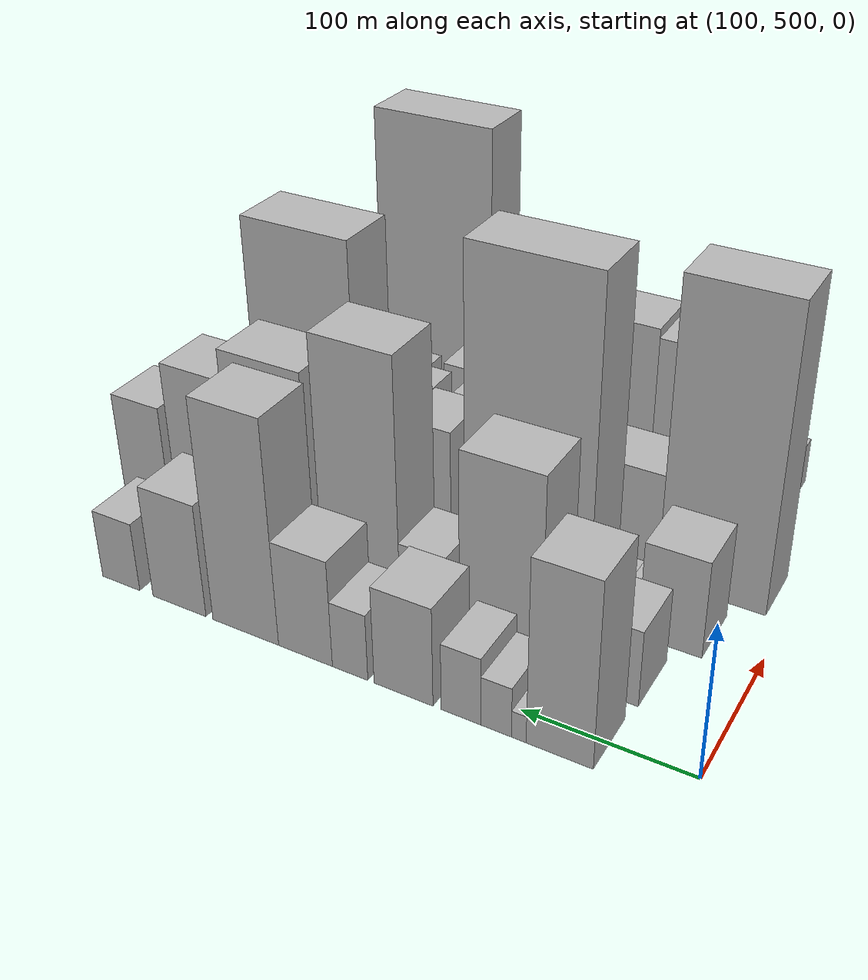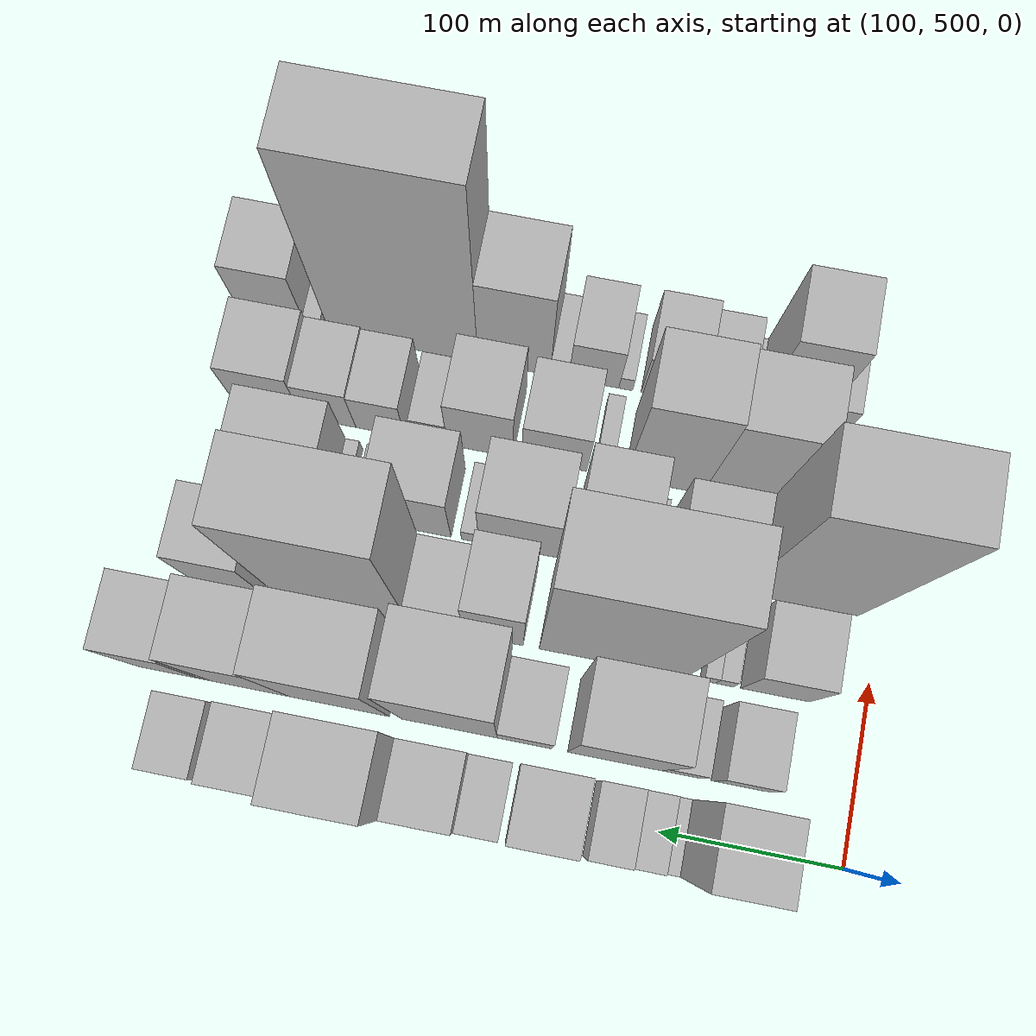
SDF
<sdf version="1.6">
 <world name="default">
  <model name="building_37">
   <static>1</static>
   <pose>100.0000 568.2960 0 0.000000 0.000000 0.000000</pose>
   <link name="link">
    <pose>0 0 60.00 0 0 0</pose>
    <collision name="collision"><geometry><box><size>40.0000 37.8832 120.0000</size></box></geometry></collision>
    <visual name="visual">
     <cast_shadows>0</cast_shadows>
     <geometry><box><size>40.0000 37.8832 120.0000</size></box></geometry>
     <material>
      <script>
       <uri>model://HANNAS_wall/materials/scripts</uri>
       <uri>model://HANNAS_wall/materials/textures</uri>
       <name>vrc/HANNAS_wall</name>
      </script>
     </material>
    </visual>
   </link>
  </model>
  <model name="building_38">
   <static>1</static>
   <pose>100.0000 591.5008 0 0.000000 0.000000 0.000000</pose>
   <link name="link">
    <pose>0 0 9.00 0 0 0</pose>
    <collision name="collision"><geometry><box><size>40.0000 8.5264 18.0000</size></box></geometry></collision>
    <visual name="visual">
     <cast_shadows>0</cast_shadows>
     <geometry><box><size>40.0000 8.5264 18.0000</size></box></geometry>
     <material>
      <script>
       <uri>model://HANNAS_wall/materials/scripts</uri>
       <uri>model://HANNAS_wall/materials/textures</uri>
       <name>vrc/HANNAS_wall</name>
      </script>
     </material>
    </visual>
   </link>
  </model>
  <model name="building_39">
   <static>1</static>
   <pose>100.0000 604.7582 0 0.000000 0.000000 0.000000</pose>
   <link name="link">
    <pose>0 0 16.50 0 0 0</pose>
    <collision name="collision"><geometry><box><size>40.0000 17.9884 33.0000</size></box></geometry></collision>
    <visual name="visual">
     <cast_shadows>0</cast_shadows>
     <geometry><box><size>40.0000 17.9884 33.0000</size></box></geometry>
     <material>
      <script>
       <uri>model://HANNAS_wall/materials/scripts</uri>
       <uri>model://HANNAS_wall/materials/textures</uri>
       <name>vrc/HANNAS_wall</name>
      </script>
     </material>
    </visual>
   </link>
  </model>
  <model name="building_40">
   <static>1</static>
   <pose>100.0000 625.6330 0 0.000000 0.000000 0.000000</pose>
   <link name="link">
    <pose>0 0 22.50 0 0 0</pose>
    <collision name="collision"><geometry><box><size>40.0000 23.7612 45.0000</size></box></geometry></collision>
    <visual name="visual">
     <cast_shadows>0</cast_shadows>
     <geometry><box><size>40.0000 23.7612 45.0000</size></box></geometry>
     <material>
      <script>
       <uri>model://HANNAS_wall/materials/scripts</uri>
       <uri>model://HANNAS_wall/materials/textures</uri>
       <name>vrc/HANNAS_wall</name>
      </script>
     </material>
    </visual>
   </link>
  </model>
  <model name="building_41">
   <static>1</static>
   <pose>100.0000 660.9530 0 0.000000 0.000000 0.000000</pose>
   <link name="link">
    <pose>0 0 33.00 0 0 0</pose>
    <collision name="collision"><geometry><box><size>40.0000 36.8787 66.0000</size></box></geometry></collision>
    <visual name="visual">
     <cast_shadows>0</cast_shadows>
     <geometry><box><size>40.0000 36.8787 66.0000</size></box></geometry>
     <material>
      <script>
       <uri>model://HANNAS_wall/materials/scripts</uri>
       <uri>model://HANNAS_wall/materials/textures</uri>
       <name>vrc/HANNAS_wall</name>
      </script>
     </material>
    </visual>
   </link>
  </model>
  <model name="building_42">
   <static>1</static>
   <pose>100.0000 694.8904 0 0.000000 0.000000 0.000000</pose>
   <link name="link">
    <pose>0 0 22.50 0 0 0</pose>
    <collision name="collision"><geometry><box><size>40.0000 22.9962 45.0000</size></box></geometry></collision>
    <visual name="visual">
     <cast_shadows>0</cast_shadows>
     <geometry><box><size>40.0000 22.9962 45.0000</size></box></geometry>
     <material>
      <script>
       <uri>model://HANNAS_wall/materials/scripts</uri>
       <uri>model://HANNAS_wall/materials/textures</uri>
       <name>vrc/HANNAS_wall</name>
      </script>
     </material>
    </visual>
   </link>
  </model>
  <model name="building_43">
   <static>1</static>
   <pose>100.0000 724.4548 0 0.000000 0.000000 0.000000</pose>
   <link name="link">
    <pose>0 0 36.00 0 0 0</pose>
    <collision name="collision"><geometry><box><size>40.0000 36.1326 72.0000</size></box></geometry></collision>
    <visual name="visual">
     <cast_shadows>0</cast_shadows>
     <geometry><box><size>40.0000 36.1326 72.0000</size></box></geometry>
     <material>
      <script>
       <uri>model://HANNAS_wall/materials/scripts</uri>
       <uri>model://HANNAS_wall/materials/textures</uri>
       <name>vrc/HANNAS_wall</name>
      </script>
     </material>
    </visual>
   </link>
  </model>
  <model name="building_44">
   <static>1</static>
   <pose>100.0000 765.5572 0 0.000000 0.000000 0.000000</pose>
   <link name="link">
    <pose>0 0 75.00 0 0 0</pose>
    <collision name="collision"><geometry><box><size>40.0000 46.0721 150.0000</size></box></geometry></collision>
    <visual name="visual">
     <cast_shadows>0</cast_shadows>
     <geometry><box><size>40.0000 46.0721 150.0000</size></box></geometry>
     <material>
      <script>
       <uri>model://HANNAS_wall/materials/scripts</uri>
       <uri>model://HANNAS_wall/materials/textures</uri>
       <name>vrc/HANNAS_wall</name>
      </script>
     </material>
    </visual>
   </link>
  </model>
  <model name="building_45">
   <static>1</static>
   <pose>100.0000 813.1013 0 0.000000 0.000000 0.000000</pose>
   <link name="link">
    <pose>0 0 39.00 0 0 0</pose>
    <collision name="collision"><geometry><box><size>40.0000 39.0160 78.0000</size></box></geometry></collision>
    <visual name="visual">
     <cast_shadows>0</cast_shadows>
     <geometry><box><size>40.0000 39.0160 78.0000</size></box></geometry>
     <material>
      <script>
       <uri>model://HANNAS_wall/materials/scripts</uri>
       <uri>model://HANNAS_wall/materials/textures</uri>
       <name>vrc/HANNAS_wall</name>
      </script>
     </material>
    </visual>
   </link>
  </model>
  <model name="building_46">
   <static>1</static>
   <pose>100.0000 856.8349 0 0.000000 0.000000 0.000000</pose>
   <link name="link">
    <pose>0 0 24.00 0 0 0</pose>
    <collision name="collision"><geometry><box><size>40.0000 28.4512 48.0000</size></box></geometry></collision>
    <visual name="visual">
     <cast_shadows>0</cast_shadows>
     <geometry><box><size>40.0000 28.4512 48.0000</size></box></geometry>
     <material>
      <script>
       <uri>model://HANNAS_wall/materials/scripts</uri>
       <uri>model://HANNAS_wall/materials/textures</uri>
       <name>vrc/HANNAS_wall</name>
      </script>
     </material>
    </visual>
   </link>
  </model>
  <model name="building_85">
   <static>1</static>
   <pose>152.0000 561.7094 0 0.000000 0.000000 0.000000</pose>
   <link name="link">
    <pose>0 0 25.50 0 0 0</pose>
    <collision name="collision"><geometry><box><size>40.0000 29.7749 51.0000</size></box></geometry></collision>
    <visual name="visual">
     <cast_shadows>0</cast_shadows>
     <geometry><box><size>40.0000 29.7749 51.0000</size></box></geometry>
     <material>
      <script>
       <uri>model://HANNAS_wall/materials/scripts</uri>
       <uri>model://HANNAS_wall/materials/textures</uri>
       <name>vrc/HANNAS_wall</name>
      </script>
     </material>
    </visual>
   </link>
  </model>
  <model name="building_86">
   <static>1</static>
   <pose>152.0000 593.4386 0 0.000000 0.000000 0.000000</pose>
   <link name="link">
    <pose>0 0 19.50 0 0 0</pose>
    <collision name="collision"><geometry><box><size>40.0000 21.6834 39.0000</size></box></geometry></collision>
    <visual name="visual">
     <cast_shadows>0</cast_shadows>
     <geometry><box><size>40.0000 21.6834 39.0000</size></box></geometry>
     <material>
      <script>
       <uri>model://HANNAS_wall/materials/scripts</uri>
       <uri>model://HANNAS_wall/materials/textures</uri>
       <name>vrc/HANNAS_wall</name>
      </script>
     </material>
    </visual>
   </link>
  </model>
  <model name="building_87">
   <static>1</static>
   <pose>152.0000 629.8472 0 0.000000 0.000000 0.000000</pose>
   <link name="link">
    <pose>0 0 64.50 0 0 0</pose>
    <collision name="collision"><geometry><box><size>40.0000 51.1340 129.0000</size></box></geometry></collision>
    <visual name="visual">
     <cast_shadows>0</cast_shadows>
     <geometry><box><size>40.0000 51.1340 129.0000</size></box></geometry>
     <material>
      <script>
       <uri>model://HANNAS_wall/materials/scripts</uri>
       <uri>model://HANNAS_wall/materials/textures</uri>
       <name>vrc/HANNAS_wall</name>
      </script>
     </material>
    </visual>
   </link>
  </model>
  <model name="building_88">
   <static>1</static>
   <pose>152.0000 679.3440 0 0.000000 0.000000 0.000000</pose>
   <link name="link">
    <pose>0 0 27.00 0 0 0</pose>
    <collision name="collision"><geometry><box><size>40.0000 29.8596 54.0000</size></box></geometry></collision>
    <visual name="visual">
     <cast_shadows>0</cast_shadows>
     <geometry><box><size>40.0000 29.8596 54.0000</size></box></geometry>
     <material>
      <script>
       <uri>model://HANNAS_wall/materials/scripts</uri>
       <uri>model://HANNAS_wall/materials/textures</uri>
       <name>vrc/HANNAS_wall</name>
      </script>
     </material>
    </visual>
   </link>
  </model>
  <model name="building_89">
   <static>1</static>
   <pose>152.0000 720.6267 0 0.000000 0.000000 0.000000</pose>
   <link name="link">
    <pose>0 0 87.00 0 0 0</pose>
    <collision name="collision"><geometry><box><size>40.0000 52.7057 174.0000</size></box></geometry></collision>
    <visual name="visual">
     <cast_shadows>0</cast_shadows>
     <geometry><box><size>40.0000 52.7057 174.0000</size></box></geometry>
     <material>
      <script>
       <uri>model://HANNAS_wall/materials/scripts</uri>
       <uri>model://HANNAS_wall/materials/textures</uri>
       <name>vrc/HANNAS_wall</name>
      </script>
     </material>
    </visual>
   </link>
  </model>
  <model name="building_90">
   <static>1</static>
   <pose>152.0000 781.8052 0 0.000000 0.000000 0.000000</pose>
   <link name="link">
    <pose>0 0 73.50 0 0 0</pose>
    <collision name="collision"><geometry><box><size>40.0000 55.6515 147.0000</size></box></geometry></collision>
    <visual name="visual">
     <cast_shadows>0</cast_shadows>
     <geometry><box><size>40.0000 55.6515 147.0000</size></box></geometry>
     <material>
      <script>
       <uri>model://HANNAS_wall/materials/scripts</uri>
       <uri>model://HANNAS_wall/materials/textures</uri>
       <name>vrc/HANNAS_wall</name>
      </script>
     </material>
    </visual>
   </link>
  </model>
  <model name="building_91">
   <static>1</static>
   <pose>152.0000 831.3857 0 0.000000 0.000000 0.000000</pose>
   <link name="link">
    <pose>0 0 63.00 0 0 0</pose>
    <collision name="collision"><geometry><box><size>40.0000 43.5095 126.0000</size></box></geometry></collision>
    <visual name="visual">
     <cast_shadows>0</cast_shadows>
     <geometry><box><size>40.0000 43.5095 126.0000</size></box></geometry>
     <material>
      <script>
       <uri>model://HANNAS_wall/materials/scripts</uri>
       <uri>model://HANNAS_wall/materials/textures</uri>
       <name>vrc/HANNAS_wall</name>
      </script>
     </material>
    </visual>
   </link>
  </model>
  <model name="building_92">
   <static>1</static>
   <pose>152.0000 856.2176 0 0.000000 0.000000 0.000000</pose>
   <link name="link">
    <pose>0 0 7.50 0 0 0</pose>
    <collision name="collision"><geometry><box><size>40.0000 6.1543 15.0000</size></box></geometry></collision>
    <visual name="visual">
     <cast_shadows>0</cast_shadows>
     <geometry><box><size>40.0000 6.1543 15.0000</size></box></geometry>
     <material>
      <script>
       <uri>model://HANNAS_wall/materials/scripts</uri>
       <uri>model://HANNAS_wall/materials/textures</uri>
       <name>vrc/HANNAS_wall</name>
      </script>
     </material>
    </visual>
   </link>
  </model>
  <model name="building_93">
   <static>1</static>
   <pose>152.0000 877.1196 0 0.000000 0.000000 0.000000</pose>
   <link name="link">
    <pose>0 0 46.50 0 0 0</pose>
    <collision name="collision"><geometry><box><size>40.0000 35.6496 93.0000</size></box></geometry></collision>
    <visual name="visual">
     <cast_shadows>0</cast_shadows>
     <geometry><box><size>40.0000 35.6496 93.0000</size></box></geometry>
     <material>
      <script>
       <uri>model://HANNAS_wall/materials/scripts</uri>
       <uri>model://HANNAS_wall/materials/textures</uri>
       <name>vrc/HANNAS_wall</name>
      </script>
     </material>
    </visual>
   </link>
  </model>
  <model name="building_138">
   <static>1</static>
   <pose>204.0000 549.7611 0 0.000000 0.000000 0.000000</pose>
   <link name="link">
    <pose>0 0 33.00 0 0 0</pose>
    <collision name="collision"><geometry><box><size>40.0000 38.1598 66.0000</size></box></geometry></collision>
    <visual name="visual">
     <cast_shadows>0</cast_shadows>
     <geometry><box><size>40.0000 38.1598 66.0000</size></box></geometry>
     <material>
      <script>
       <uri>model://HANNAS_wall/materials/scripts</uri>
       <uri>model://HANNAS_wall/materials/textures</uri>
       <name>vrc/HANNAS_wall</name>
      </script>
     </material>
    </visual>
   </link>
  </model>
  <model name="building_139">
   <static>1</static>
   <pose>204.0000 577.8417 0 0.000000 0.000000 0.000000</pose>
   <link name="link">
    <pose>0 0 10.50 0 0 0</pose>
    <collision name="collision"><geometry><box><size>40.0000 10.0015 21.0000</size></box></geometry></collision>
    <visual name="visual">
     <cast_shadows>0</cast_shadows>
     <geometry><box><size>40.0000 10.0015 21.0000</size></box></geometry>
     <material>
      <script>
       <uri>model://HANNAS_wall/materials/scripts</uri>
       <uri>model://HANNAS_wall/materials/textures</uri>
       <name>vrc/HANNAS_wall</name>
      </script>
     </material>
    </visual>
   </link>
  </model>
  <model name="building_140">
   <static>1</static>
   <pose>204.0000 587.1282 0 0.000000 0.000000 0.000000</pose>
   <link name="link">
    <pose>0 0 10.50 0 0 0</pose>
    <collision name="collision"><geometry><box><size>40.0000 8.5715 21.0000</size></box></geometry></collision>
    <visual name="visual">
     <cast_shadows>0</cast_shadows>
     <geometry><box><size>40.0000 8.5715 21.0000</size></box></geometry>
     <material>
      <script>
       <uri>model://HANNAS_wall/materials/scripts</uri>
       <uri>model://HANNAS_wall/materials/textures</uri>
       <name>vrc/HANNAS_wall</name>
      </script>
     </material>
    </visual>
   </link>
  </model>
  <model name="building_141">
   <static>1</static>
   <pose>204.0000 640.2307 0 0.000000 0.000000 0.000000</pose>
   <link name="link">
    <pose>0 0 111.00 0 0 0</pose>
    <collision name="collision"><geometry><box><size>40.0000 81.6335 222.0000</size></box></geometry></collision>
    <visual name="visual">
     <cast_shadows>0</cast_shadows>
     <geometry><box><size>40.0000 81.6335 222.0000</size></box></geometry>
     <material>
      <script>
       <uri>model://HANNAS_wall/materials/scripts</uri>
       <uri>model://HANNAS_wall/materials/textures</uri>
       <name>vrc/HANNAS_wall</name>
      </script>
     </material>
    </visual>
   </link>
  </model>
  <model name="building_142">
   <static>1</static>
   <pose>204.0000 706.3873 0 0.000000 0.000000 0.000000</pose>
   <link name="link">
    <pose>0 0 49.50 0 0 0</pose>
    <collision name="collision"><geometry><box><size>40.0000 32.6797 99.0000</size></box></geometry></collision>
    <visual name="visual">
     <cast_shadows>0</cast_shadows>
     <geometry><box><size>40.0000 32.6797 99.0000</size></box></geometry>
     <material>
      <script>
       <uri>model://HANNAS_wall/materials/scripts</uri>
       <uri>model://HANNAS_wall/materials/textures</uri>
       <name>vrc/HANNAS_wall</name>
      </script>
     </material>
    </visual>
   </link>
  </model>
  <model name="building_143">
   <static>1</static>
   <pose>204.0000 738.4612 0 0.000000 0.000000 0.000000</pose>
   <link name="link">
    <pose>0 0 28.50 0 0 0</pose>
    <collision name="collision"><geometry><box><size>40.0000 31.4680 57.0000</size></box></geometry></collision>
    <visual name="visual">
     <cast_shadows>0</cast_shadows>
     <geometry><box><size>40.0000 31.4680 57.0000</size></box></geometry>
     <material>
      <script>
       <uri>model://HANNAS_wall/materials/scripts</uri>
       <uri>model://HANNAS_wall/materials/textures</uri>
       <name>vrc/HANNAS_wall</name>
      </script>
     </material>
    </visual>
   </link>
  </model>
  <model name="building_144">
   <static>1</static>
   <pose>204.0000 790.3622 0 0.000000 0.000000 0.000000</pose>
   <link name="link">
    <pose>0 0 102.00 0 0 0</pose>
    <collision name="collision"><geometry><box><size>40.0000 72.3341 204.0000</size></box></geometry></collision>
    <visual name="visual">
     <cast_shadows>0</cast_shadows>
     <geometry><box><size>40.0000 72.3341 204.0000</size></box></geometry>
     <material>
      <script>
       <uri>model://HANNAS_wall/materials/scripts</uri>
       <uri>model://HANNAS_wall/materials/textures</uri>
       <name>vrc/HANNAS_wall</name>
      </script>
     </material>
    </visual>
   </link>
  </model>
  <model name="building_145">
   <static>1</static>
   <pose>204.0000 856.4001 0 0.000000 0.000000 0.000000</pose>
   <link name="link">
    <pose>0 0 39.00 0 0 0</pose>
    <collision name="collision"><geometry><box><size>40.0000 39.7417 78.0000</size></box></geometry></collision>
    <visual name="visual">
     <cast_shadows>0</cast_shadows>
     <geometry><box><size>40.0000 39.7417 78.0000</size></box></geometry>
     <material>
      <script>
       <uri>model://HANNAS_wall/materials/scripts</uri>
       <uri>model://HANNAS_wall/materials/textures</uri>
       <name>vrc/HANNAS_wall</name>
      </script>
     </material>
    </visual>
   </link>
  </model>
  <model name="building_193">
   <static>1</static>
   <pose>256.0000 544.7608 0 0.000000 0.000000 0.000000</pose>
   <link name="link">
    <pose>0 0 102.00 0 0 0</pose>
    <collision name="collision"><geometry><box><size>40.0000 67.1711 204.0000</size></box></geometry></collision>
    <visual name="visual">
     <cast_shadows>0</cast_shadows>
     <geometry><box><size>40.0000 67.1711 204.0000</size></box></geometry>
     <material>
      <script>
       <uri>model://HANNAS_wall/materials/scripts</uri>
       <uri>model://HANNAS_wall/materials/textures</uri>
       <name>vrc/HANNAS_wall</name>
      </script>
     </material>
    </visual>
   </link>
  </model>
  <model name="building_194">
   <static>1</static>
   <pose>256.0000 599.3423 0 0.000000 0.000000 0.000000</pose>
   <link name="link">
    <pose>0 0 37.50 0 0 0</pose>
    <collision name="collision"><geometry><box><size>40.0000 41.9919 75.0000</size></box></geometry></collision>
    <visual name="visual">
     <cast_shadows>0</cast_shadows>
     <geometry><box><size>40.0000 41.9919 75.0000</size></box></geometry>
     <material>
      <script>
       <uri>model://HANNAS_wall/materials/scripts</uri>
       <uri>model://HANNAS_wall/materials/textures</uri>
       <name>vrc/HANNAS_wall</name>
      </script>
     </material>
    </visual>
   </link>
  </model>
  <model name="building_195">
   <static>1</static>
   <pose>256.0000 629.9971 0 0.000000 0.000000 0.000000</pose>
   <link name="link">
    <pose>0 0 10.50 0 0 0</pose>
    <collision name="collision"><geometry><box><size>40.0000 9.3177 21.0000</size></box></geometry></collision>
    <visual name="visual">
     <cast_shadows>0</cast_shadows>
     <geometry><box><size>40.0000 9.3177 21.0000</size></box></geometry>
     <material>
      <script>
       <uri>model://HANNAS_wall/materials/scripts</uri>
       <uri>model://HANNAS_wall/materials/textures</uri>
       <name>vrc/HANNAS_wall</name>
      </script>
     </material>
    </visual>
   </link>
  </model>
  <model name="building_196">
   <static>1</static>
   <pose>256.0000 654.0666 0 0.000000 0.000000 0.000000</pose>
   <link name="link">
    <pose>0 0 52.50 0 0 0</pose>
    <collision name="collision"><geometry><box><size>40.0000 38.8213 105.0000</size></box></geometry></collision>
    <visual name="visual">
     <cast_shadows>0</cast_shadows>
     <geometry><box><size>40.0000 38.8213 105.0000</size></box></geometry>
     <material>
      <script>
       <uri>model://HANNAS_wall/materials/scripts</uri>
       <uri>model://HANNAS_wall/materials/textures</uri>
       <name>vrc/HANNAS_wall</name>
      </script>
     </material>
    </visual>
   </link>
  </model>
  <model name="building_197">
   <static>1</static>
   <pose>256.0000 701.8494 0 0.000000 0.000000 0.000000</pose>
   <link name="link">
    <pose>0 0 40.50 0 0 0</pose>
    <collision name="collision"><geometry><box><size>40.0000 46.7443 81.0000</size></box></geometry></collision>
    <visual name="visual">
     <cast_shadows>0</cast_shadows>
     <geometry><box><size>40.0000 46.7443 81.0000</size></box></geometry>
     <material>
      <script>
       <uri>model://HANNAS_wall/materials/scripts</uri>
       <uri>model://HANNAS_wall/materials/textures</uri>
       <name>vrc/HANNAS_wall</name>
      </script>
     </material>
    </visual>
   </link>
  </model>
  <model name="building_198">
   <static>1</static>
   <pose>256.0000 730.1945 0 0.000000 0.000000 0.000000</pose>
   <link name="link">
    <pose>0 0 10.50 0 0 0</pose>
    <collision name="collision"><geometry><box><size>40.0000 9.9459 21.0000</size></box></geometry></collision>
    <visual name="visual">
     <cast_shadows>0</cast_shadows>
     <geometry><box><size>40.0000 9.9459 21.0000</size></box></geometry>
     <material>
      <script>
       <uri>model://HANNAS_wall/materials/scripts</uri>
       <uri>model://HANNAS_wall/materials/textures</uri>
       <name>vrc/HANNAS_wall</name>
      </script>
     </material>
    </visual>
   </link>
  </model>
  <model name="building_199">
   <static>1</static>
   <pose>256.0000 763.1852 0 0.000000 0.000000 0.000000</pose>
   <link name="link">
    <pose>0 0 39.00 0 0 0</pose>
    <collision name="collision"><geometry><box><size>40.0000 44.0355 78.0000</size></box></geometry></collision>
    <visual name="visual">
     <cast_shadows>0</cast_shadows>
     <geometry><box><size>40.0000 44.0355 78.0000</size></box></geometry>
     <material>
      <script>
       <uri>model://HANNAS_wall/materials/scripts</uri>
       <uri>model://HANNAS_wall/materials/textures</uri>
       <name>vrc/HANNAS_wall</name>
      </script>
     </material>
    </visual>
   </link>
  </model>
  <model name="building_200">
   <static>1</static>
   <pose>256.0000 792.9066 0 0.000000 0.000000 0.000000</pose>
   <link name="link">
    <pose>0 0 7.50 0 0 0</pose>
    <collision name="collision"><geometry><box><size>40.0000 7.4071 15.0000</size></box></geometry></collision>
    <visual name="visual">
     <cast_shadows>0</cast_shadows>
     <geometry><box><size>40.0000 7.4071 15.0000</size></box></geometry>
     <material>
      <script>
       <uri>model://HANNAS_wall/materials/scripts</uri>
       <uri>model://HANNAS_wall/materials/textures</uri>
       <name>vrc/HANNAS_wall</name>
      </script>
     </material>
    </visual>
   </link>
  </model>
  <model name="building_201">
   <static>1</static>
   <pose>256.0000 804.6132 0 0.000000 0.000000 0.000000</pose>
   <link name="link">
    <pose>0 0 9.00 0 0 0</pose>
    <collision name="collision"><geometry><box><size>40.0000 8.0062 18.0000</size></box></geometry></collision>
    <visual name="visual">
     <cast_shadows>0</cast_shadows>
     <geometry><box><size>40.0000 8.0062 18.0000</size></box></geometry>
     <material>
      <script>
       <uri>model://HANNAS_wall/materials/scripts</uri>
       <uri>model://HANNAS_wall/materials/textures</uri>
       <name>vrc/HANNAS_wall</name>
      </script>
     </material>
    </visual>
   </link>
  </model>
  <model name="building_202">
   <static>1</static>
   <pose>256.0000 833.2909 0 0.000000 0.000000 0.000000</pose>
   <link name="link">
    <pose>0 0 43.50 0 0 0</pose>
    <collision name="collision"><geometry><box><size>40.0000 49.3492 87.0000</size></box></geometry></collision>
    <visual name="visual">
     <cast_shadows>0</cast_shadows>
     <geometry><box><size>40.0000 49.3492 87.0000</size></box></geometry>
     <material>
      <script>
       <uri>model://HANNAS_wall/materials/scripts</uri>
       <uri>model://HANNAS_wall/materials/textures</uri>
       <name>vrc/HANNAS_wall</name>
      </script>
     </material>
    </visual>
   </link>
  </model>
  <model name="building_203">
   <static>1</static>
   <pose>256.0000 863.3743 0 0.000000 0.000000 0.000000</pose>
   <link name="link">
    <pose>0 0 12.00 0 0 0</pose>
    <collision name="collision"><geometry><box><size>40.0000 10.8174 24.0000</size></box></geometry></collision>
    <visual name="visual">
     <cast_shadows>0</cast_shadows>
     <geometry><box><size>40.0000 10.8174 24.0000</size></box></geometry>
     <material>
      <script>
       <uri>model://HANNAS_wall/materials/scripts</uri>
       <uri>model://HANNAS_wall/materials/textures</uri>
       <name>vrc/HANNAS_wall</name>
      </script>
     </material>
    </visual>
   </link>
  </model>
  <model name="building_243">
   <static>1</static>
   <pose>308.0000 543.5518 0 0.000000 0.000000 0.000000</pose>
   <link name="link">
    <pose>0 0 24.00 0 0 0</pose>
    <collision name="collision"><geometry><box><size>40.0000 24.6292 48.0000</size></box></geometry></collision>
    <visual name="visual">
     <cast_shadows>0</cast_shadows>
     <geometry><box><size>40.0000 24.6292 48.0000</size></box></geometry>
     <material>
      <script>
       <uri>model://HANNAS_wall/materials/scripts</uri>
       <uri>model://HANNAS_wall/materials/textures</uri>
       <name>vrc/HANNAS_wall</name>
      </script>
     </material>
    </visual>
   </link>
  </model>
  <model name="building_244">
   <static>1</static>
   <pose>308.0000 558.8970 0 0.000000 0.000000 0.000000</pose>
   <link name="link">
    <pose>0 0 7.50 0 0 0</pose>
    <collision name="collision"><geometry><box><size>40.0000 6.0612 15.0000</size></box></geometry></collision>
    <visual name="visual">
     <cast_shadows>0</cast_shadows>
     <geometry><box><size>40.0000 6.0612 15.0000</size></box></geometry>
     <material>
      <script>
       <uri>model://HANNAS_wall/materials/scripts</uri>
       <uri>model://HANNAS_wall/materials/textures</uri>
       <name>vrc/HANNAS_wall</name>
      </script>
     </material>
    </visual>
   </link>
  </model>
  <model name="building_245">
   <static>1</static>
   <pose>308.0000 584.5981 0 0.000000 0.000000 0.000000</pose>
   <link name="link">
    <pose>0 0 66.00 0 0 0</pose>
    <collision name="collision"><geometry><box><size>40.0000 45.3409 132.0000</size></box></geometry></collision>
    <visual name="visual">
     <cast_shadows>0</cast_shadows>
     <geometry><box><size>40.0000 45.3409 132.0000</size></box></geometry>
     <material>
      <script>
       <uri>model://HANNAS_wall/materials/scripts</uri>
       <uri>model://HANNAS_wall/materials/textures</uri>
       <name>vrc/HANNAS_wall</name>
      </script>
     </material>
    </visual>
   </link>
  </model>
  <model name="building_246">
   <static>1</static>
   <pose>308.0000 629.5531 0 0.000000 0.000000 0.000000</pose>
   <link name="link">
    <pose>0 0 69.00 0 0 0</pose>
    <collision name="collision"><geometry><box><size>40.0000 44.5692 138.0000</size></box></geometry></collision>
    <visual name="visual">
     <cast_shadows>0</cast_shadows>
     <geometry><box><size>40.0000 44.5692 138.0000</size></box></geometry>
     <material>
      <script>
       <uri>model://HANNAS_wall/materials/scripts</uri>
       <uri>model://HANNAS_wall/materials/textures</uri>
       <name>vrc/HANNAS_wall</name>
      </script>
     </material>
    </visual>
   </link>
  </model>
  <model name="building_247">
   <static>1</static>
   <pose>308.0000 664.7081 0 0.000000 0.000000 0.000000</pose>
   <link name="link">
    <pose>0 0 12.00 0 0 0</pose>
    <collision name="collision"><geometry><box><size>40.0000 9.7408 24.0000</size></box></geometry></collision>
    <visual name="visual">
     <cast_shadows>0</cast_shadows>
     <geometry><box><size>40.0000 9.7408 24.0000</size></box></geometry>
     <material>
      <script>
       <uri>model://HANNAS_wall/materials/scripts</uri>
       <uri>model://HANNAS_wall/materials/textures</uri>
       <name>vrc/HANNAS_wall</name>
      </script>
     </material>
    </visual>
   </link>
  </model>
  <model name="building_248">
   <static>1</static>
   <pose>308.0000 692.2933 0 0.000000 0.000000 0.000000</pose>
   <link name="link">
    <pose>0 0 31.50 0 0 0</pose>
    <collision name="collision"><geometry><box><size>40.0000 37.4297 63.0000</size></box></geometry></collision>
    <visual name="visual">
     <cast_shadows>0</cast_shadows>
     <geometry><box><size>40.0000 37.4297 63.0000</size></box></geometry>
     <material>
      <script>
       <uri>model://HANNAS_wall/materials/scripts</uri>
       <uri>model://HANNAS_wall/materials/textures</uri>
       <name>vrc/HANNAS_wall</name>
      </script>
     </material>
    </visual>
   </link>
  </model>
  <model name="building_249">
   <static>1</static>
   <pose>308.0000 734.9573 0 0.000000 0.000000 0.000000</pose>
   <link name="link">
    <pose>0 0 37.50 0 0 0</pose>
    <collision name="collision"><geometry><box><size>40.0000 37.8983 75.0000</size></box></geometry></collision>
    <visual name="visual">
     <cast_shadows>0</cast_shadows>
     <geometry><box><size>40.0000 37.8983 75.0000</size></box></geometry>
     <material>
      <script>
       <uri>model://HANNAS_wall/materials/scripts</uri>
       <uri>model://HANNAS_wall/materials/textures</uri>
       <name>vrc/HANNAS_wall</name>
      </script>
     </material>
    </visual>
   </link>
  </model>
  <model name="building_250">
   <static>1</static>
   <pose>308.0000 764.2927 0 0.000000 0.000000 0.000000</pose>
   <link name="link">
    <pose>0 0 18.00 0 0 0</pose>
    <collision name="collision"><geometry><box><size>40.0000 20.7725 36.0000</size></box></geometry></collision>
    <visual name="visual">
     <cast_shadows>0</cast_shadows>
     <geometry><box><size>40.0000 20.7725 36.0000</size></box></geometry>
     <material>
      <script>
       <uri>model://HANNAS_wall/materials/scripts</uri>
       <uri>model://HANNAS_wall/materials/textures</uri>
       <name>vrc/HANNAS_wall</name>
      </script>
     </material>
    </visual>
   </link>
  </model>
  <model name="building_251">
   <static>1</static>
   <pose>308.0000 792.9617 0 0.000000 0.000000 0.000000</pose>
   <link name="link">
    <pose>0 0 27.00 0 0 0</pose>
    <collision name="collision"><geometry><box><size>40.0000 28.5655 54.0000</size></box></geometry></collision>
    <visual name="visual">
     <cast_shadows>0</cast_shadows>
     <geometry><box><size>40.0000 28.5655 54.0000</size></box></geometry>
     <material>
      <script>
       <uri>model://HANNAS_wall/materials/scripts</uri>
       <uri>model://HANNAS_wall/materials/textures</uri>
       <name>vrc/HANNAS_wall</name>
      </script>
     </material>
    </visual>
   </link>
  </model>
  <model name="building_252">
   <static>1</static>
   <pose>308.0000 822.6263 0 0.000000 0.000000 0.000000</pose>
   <link name="link">
    <pose>0 0 28.50 0 0 0</pose>
    <collision name="collision"><geometry><box><size>40.0000 30.7636 57.0000</size></box></geometry></collision>
    <visual name="visual">
     <cast_shadows>0</cast_shadows>
     <geometry><box><size>40.0000 30.7636 57.0000</size></box></geometry>
     <material>
      <script>
       <uri>model://HANNAS_wall/materials/scripts</uri>
       <uri>model://HANNAS_wall/materials/textures</uri>
       <name>vrc/HANNAS_wall</name>
      </script>
     </material>
    </visual>
   </link>
  </model>
  <model name="building_253">
   <static>1</static>
   <pose>308.0000 857.6515 0 0.000000 0.000000 0.000000</pose>
   <link name="link">
    <pose>0 0 33.00 0 0 0</pose>
    <collision name="collision"><geometry><box><size>40.0000 39.2868 66.0000</size></box></geometry></collision>
    <visual name="visual">
     <cast_shadows>0</cast_shadows>
     <geometry><box><size>40.0000 39.2868 66.0000</size></box></geometry>
     <material>
      <script>
       <uri>model://HANNAS_wall/materials/scripts</uri>
       <uri>model://HANNAS_wall/materials/textures</uri>
       <name>vrc/HANNAS_wall</name>
      </script>
     </material>
    </visual>
   </link>
  </model>
  <model name="building_291">
   <static>1</static>
   <pose>360.0000 540.9793 0 0.000000 0.000000 0.000000</pose>
   <link name="link">
    <pose>0 0 16.50 0 0 0</pose>
    <collision name="collision"><geometry><box><size>40.0000 18.0557 33.0000</size></box></geometry></collision>
    <visual name="visual">
     <cast_shadows>0</cast_shadows>
     <geometry><box><size>40.0000 18.0557 33.0000</size></box></geometry>
     <material>
      <script>
       <uri>model://HANNAS_wall/materials/scripts</uri>
       <uri>model://HANNAS_wall/materials/textures</uri>
       <name>vrc/HANNAS_wall</name>
      </script>
     </material>
    </visual>
   </link>
  </model>
  <model name="building_292">
   <static>1</static>
   <pose>360.0000 568.2218 0 0.000000 0.000000 0.000000</pose>
   <link name="link">
    <pose>0 0 60.00 0 0 0</pose>
    <collision name="collision"><geometry><box><size>40.0000 36.4292 120.0000</size></box></geometry></collision>
    <visual name="visual">
     <cast_shadows>0</cast_shadows>
     <geometry><box><size>40.0000 36.4292 120.0000</size></box></geometry>
     <material>
      <script>
       <uri>model://HANNAS_wall/materials/scripts</uri>
       <uri>model://HANNAS_wall/materials/textures</uri>
       <name>vrc/HANNAS_wall</name>
      </script>
     </material>
    </visual>
   </link>
  </model>
  <model name="building_293">
   <static>1</static>
   <pose>360.0000 589.8414 0 0.000000 0.000000 0.000000</pose>
   <link name="link">
    <pose>0 0 7.50 0 0 0</pose>
    <collision name="collision"><geometry><box><size>40.0000 6.8101 15.0000</size></box></geometry></collision>
    <visual name="visual">
     <cast_shadows>0</cast_shadows>
     <geometry><box><size>40.0000 6.8101 15.0000</size></box></geometry>
     <material>
      <script>
       <uri>model://HANNAS_wall/materials/scripts</uri>
       <uri>model://HANNAS_wall/materials/textures</uri>
       <name>vrc/HANNAS_wall</name>
      </script>
     </material>
    </visual>
   </link>
  </model>
  <model name="building_294">
   <static>1</static>
   <pose>360.0000 606.2936 0 0.000000 0.000000 0.000000</pose>
   <link name="link">
    <pose>0 0 22.50 0 0 0</pose>
    <collision name="collision"><geometry><box><size>40.0000 26.0942 45.0000</size></box></geometry></collision>
    <visual name="visual">
     <cast_shadows>0</cast_shadows>
     <geometry><box><size>40.0000 26.0942 45.0000</size></box></geometry>
     <material>
      <script>
       <uri>model://HANNAS_wall/materials/scripts</uri>
       <uri>model://HANNAS_wall/materials/textures</uri>
       <name>vrc/HANNAS_wall</name>
      </script>
     </material>
    </visual>
   </link>
  </model>
  <model name="building_295">
   <static>1</static>
   <pose>360.0000 635.3473 0 0.000000 0.000000 0.000000</pose>
   <link name="link">
    <pose>0 0 28.50 0 0 0</pose>
    <collision name="collision"><geometry><box><size>40.0000 32.0133 57.0000</size></box></geometry></collision>
    <visual name="visual">
     <cast_shadows>0</cast_shadows>
     <geometry><box><size>40.0000 32.0133 57.0000</size></box></geometry>
     <material>
      <script>
       <uri>model://HANNAS_wall/materials/scripts</uri>
       <uri>model://HANNAS_wall/materials/textures</uri>
       <name>vrc/HANNAS_wall</name>
      </script>
     </material>
    </visual>
   </link>
  </model>
  <model name="building_296">
   <static>1</static>
   <pose>360.0000 660.3525 0 0.000000 0.000000 0.000000</pose>
   <link name="link">
    <pose>0 0 9.00 0 0 0</pose>
    <collision name="collision"><geometry><box><size>40.0000 7.9969 18.0000</size></box></geometry></collision>
    <visual name="visual">
     <cast_shadows>0</cast_shadows>
     <geometry><box><size>40.0000 7.9969 18.0000</size></box></geometry>
     <material>
      <script>
       <uri>model://HANNAS_wall/materials/scripts</uri>
       <uri>model://HANNAS_wall/materials/textures</uri>
       <name>vrc/HANNAS_wall</name>
      </script>
     </material>
    </visual>
   </link>
  </model>
  <model name="building_297">
   <static>1</static>
   <pose>360.0000 679.0064 0 0.000000 0.000000 0.000000</pose>
   <link name="link">
    <pose>0 0 28.50 0 0 0</pose>
    <collision name="collision"><geometry><box><size>40.0000 29.3109 57.0000</size></box></geometry></collision>
    <visual name="visual">
     <cast_shadows>0</cast_shadows>
     <geometry><box><size>40.0000 29.3109 57.0000</size></box></geometry>
     <material>
      <script>
       <uri>model://HANNAS_wall/materials/scripts</uri>
       <uri>model://HANNAS_wall/materials/textures</uri>
       <name>vrc/HANNAS_wall</name>
      </script>
     </material>
    </visual>
   </link>
  </model>
  <model name="building_298">
   <static>1</static>
   <pose>360.0000 699.0659 0 0.000000 0.000000 0.000000</pose>
   <link name="link">
    <pose>0 0 13.50 0 0 0</pose>
    <collision name="collision"><geometry><box><size>40.0000 10.8082 27.0000</size></box></geometry></collision>
    <visual name="visual">
     <cast_shadows>0</cast_shadows>
     <geometry><box><size>40.0000 10.8082 27.0000</size></box></geometry>
     <material>
      <script>
       <uri>model://HANNAS_wall/materials/scripts</uri>
       <uri>model://HANNAS_wall/materials/textures</uri>
       <name>vrc/HANNAS_wall</name>
      </script>
     </material>
    </visual>
   </link>
  </model>
  <model name="building_299">
   <static>1</static>
   <pose>360.0000 725.6294 0 0.000000 0.000000 0.000000</pose>
   <link name="link">
    <pose>0 0 57.00 0 0 0</pose>
    <collision name="collision"><geometry><box><size>40.0000 42.3187 114.0000</size></box></geometry></collision>
    <visual name="visual">
     <cast_shadows>0</cast_shadows>
     <geometry><box><size>40.0000 42.3187 114.0000</size></box></geometry>
     <material>
      <script>
       <uri>model://HANNAS_wall/materials/scripts</uri>
       <uri>model://HANNAS_wall/materials/textures</uri>
       <name>vrc/HANNAS_wall</name>
      </script>
     </material>
    </visual>
   </link>
  </model>
  <model name="building_300">
   <static>1</static>
   <pose>360.0000 790.4212 0 0.000000 0.000000 0.000000</pose>
   <link name="link">
    <pose>0 0 109.50 0 0 0</pose>
    <collision name="collision"><geometry><box><size>40.0000 87.2650 219.0000</size></box></geometry></collision>
    <visual name="visual">
     <cast_shadows>0</cast_shadows>
     <geometry><box><size>40.0000 87.2650 219.0000</size></box></geometry>
     <material>
      <script>
       <uri>model://HANNAS_wall/materials/scripts</uri>
       <uri>model://HANNAS_wall/materials/textures</uri>
       <name>vrc/HANNAS_wall</name>
      </script>
     </material>
    </visual>
   </link>
  </model>
  <model name="building_301">
   <static>1</static>
   <pose>360.0000 842.2947 0 0.000000 0.000000 0.000000</pose>
   <link name="link">
    <pose>0 0 10.50 0 0 0</pose>
    <collision name="collision"><geometry><box><size>40.0000 10.4819 21.0000</size></box></geometry></collision>
    <visual name="visual">
     <cast_shadows>0</cast_shadows>
     <geometry><box><size>40.0000 10.4819 21.0000</size></box></geometry>
     <material>
      <script>
       <uri>model://HANNAS_wall/materials/scripts</uri>
       <uri>model://HANNAS_wall/materials/textures</uri>
       <name>vrc/HANNAS_wall</name>
      </script>
     </material>
    </visual>
   </link>
  </model>
  <model name="building_302">
   <static>1</static>
   <pose>360.0000 866.6035 0 0.000000 0.000000 0.000000</pose>
   <link name="link">
    <pose>0 0 37.50 0 0 0</pose>
    <collision name="collision"><geometry><box><size>40.0000 38.1358 75.0000</size></box></geometry></collision>
    <visual name="visual">
     <cast_shadows>0</cast_shadows>
     <geometry><box><size>40.0000 38.1358 75.0000</size></box></geometry>
     <material>
      <script>
       <uri>model://HANNAS_wall/materials/scripts</uri>
       <uri>model://HANNAS_wall/materials/textures</uri>
       <name>vrc/HANNAS_wall</name>
      </script>
     </material>
    </visual>
   </link>
  </model>
 </world>
</sdf>
